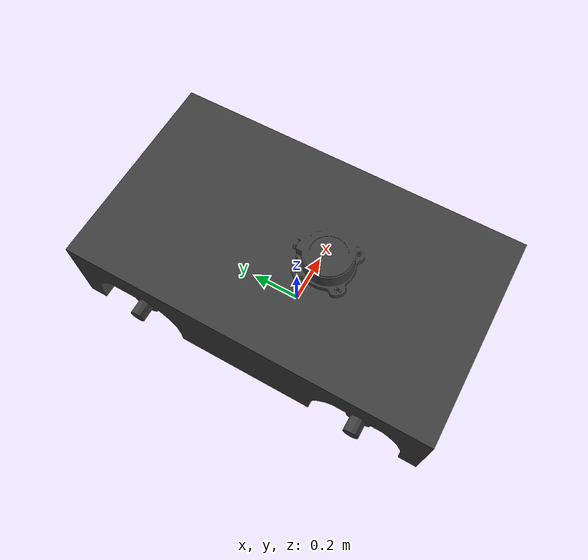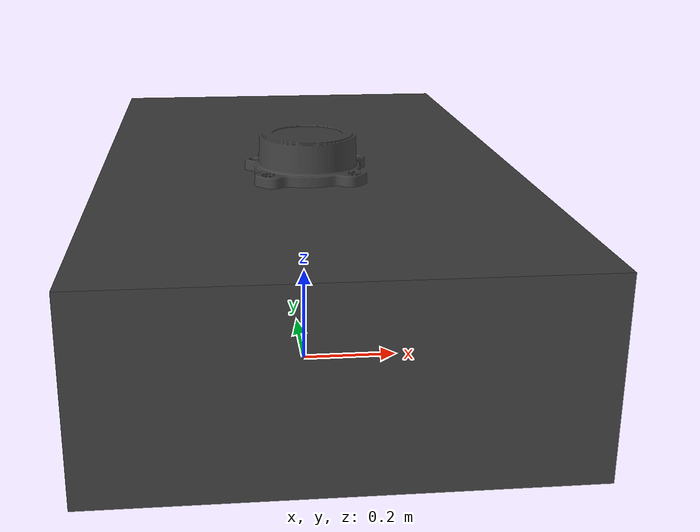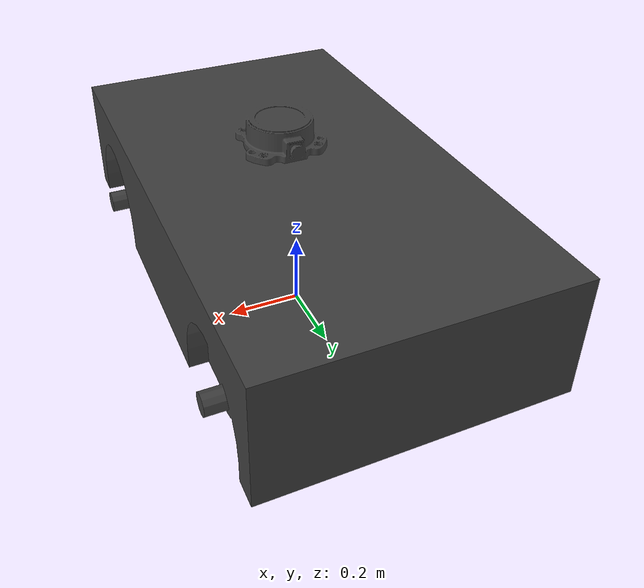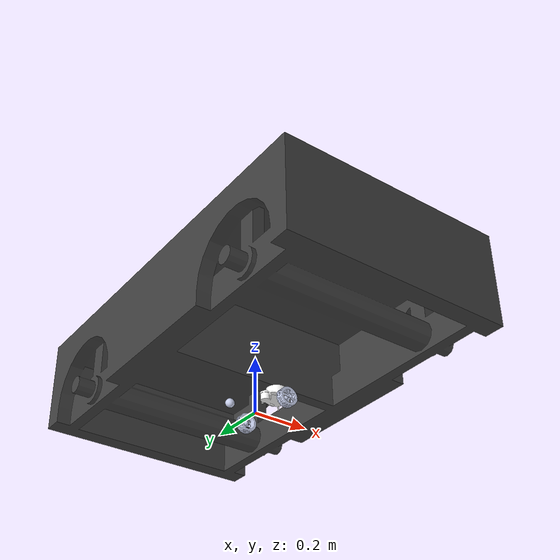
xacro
<?xml version="1.0" encoding="utf-8"?>
<robot xmlns:xacro="http://ros.org/wiki/xacro" name="robot_car">

  <!-- Các tham số chung -->
  <xacro:property name="base_color" value="0.25 0.25 0.25 1" />
  <xacro:property name="wheel_color" value="0.79 0.82 0.93 1" />
  <xacro:property name="ydlidar_color" value="1 1 1 1" />
  <xacro:property name="mesh_path" value="package://robot_description/meshes/" />

  <!-- Base Link -->
  <link name="base_link">
    <inertial>
      <origin xyz="0.00678154130032599 1.02572811355728E-11 0.049058783144438" rpy="0 0 0" />
      <mass value="0.73044118152173" />
      <inertia ixx="0.00392745212406862" ixy="-3.37182307490775E-11" ixz="0.000128556224286988"
              iyy="0.00654116388166114" iyz="-2.67918025679153E-17" izz="0.00775398575956591" />
    </inertial>
    <visual>
      <origin xyz="0 0 0" rpy="0 0 0" />
      <geometry>
        <mesh filename="${mesh_path}base_link.STL" />
      </geometry>
      <material name="base_material">
        <color rgba="${base_color}" />
      </material>
    </visual>
    <collision>
      <origin xyz="0 0 0" rpy="0 0 0" />
      <geometry>
        <mesh filename="${mesh_path}base_link.STL" />
      </geometry>
    </collision>
  </link>

  <!-- Right Wheel -->
  <xacro:macro name="wheel" params="wheel_name joint_name origin_xyz origin_rpy">
    <link name="${wheel_name}">
      <inertial>
        <origin xyz="0 0 0" rpy="0 0 0" />
        <mass value="0.02973385270431" />
        <inertia ixx="1.22905526652631E-05" ixy="0" ixz="0"
                iyy="1.22912184621518E-05" iyz="0" izz="2.03782430173705E-05" />
      </inertial>
      <visual>
        <origin xyz="0 0 0" rpy="0 0 0" />
        <geometry>
          <mesh filename="${mesh_path}${wheel_name}.STL" />
        </geometry>
        <material name="${wheel_name}_material">
          <color rgba="${wheel_color}" />
        </material>
      </visual>
      <collision>
        <origin xyz="0 0 0" rpy="0 0 0" />
        <geometry>
          <mesh filename="${mesh_path}${wheel_name}.STL" />
        </geometry>
      </collision>
    </link>
    <joint name="${joint_name}" type="continuous">
      <origin xyz="${origin_xyz}" rpy="${origin_rpy}" />
      <parent link="base_link" />
      <child link="${wheel_name}" />
      <axis xyz="0 0 1" />
      <dynamics damping="0.1" friction="0.1" />
    </joint>
  </xacro:macro>

  <!-- Left Wheel -->
  <xacro:wheel wheel_name="right_wheel" joint_name="right_wheel_joint"
                origin_xyz="0.043261 -0.1225 0.02" origin_rpy="-1.5708 0 0" />
  <xacro:wheel wheel_name="left_wheel" joint_name="left_wheel_joint"
                origin_xyz="0.043282 0.1225 0.02" origin_rpy="-1.5708 0 0" />

  <!-- Caster Wheel -->
  <link name="caster_wheel">
    <inertial>
      <origin xyz="-0.16814 0.0040136 -0.0726" rpy="0 0 0" />
      <mass value="0.014137" />
      <inertia ixx="1.2723E-06" ixy="0" ixz="0" iyy="1.2723E-06" iyz="0" izz="1.2723E-06" />
    </inertial>
    <visual>
      <origin xyz="0 0 0" rpy="0 0 0" />
      <geometry>
        <mesh filename="${mesh_path}caster_wheel.STL" />
      </geometry>
      <material name="caster_wheel_material">
        <color rgba="${wheel_color}" />
      </material>
    </visual>
    <collision>
      <origin xyz="0 0 0" rpy="0 0 0" />
      <geometry>
        <mesh filename="${mesh_path}caster_wheel.STL" />
      </geometry>
    </collision>
  </link>
  <joint name="caster_wheel_joint" type="fixed">
    <origin xyz="0.071461 -0.00080282 0.0776" rpy="0 0 0.019092" />
    <parent link="base_link" />
    <child link="caster_wheel" />
    <axis xyz="0 0 1" />
    <dynamics damping="0.1" friction="0.1" />
  </joint>

  <!-- LIDAR -->
  <link name="link_ydlidar">
    <inertial>
      <origin xyz="0 0 0" rpy="0 0 0" />
      <mass value="0" />
      <inertia ixx="0" ixy="0" ixz="0" iyy="0" iyz="0" izz="0" />
    </inertial>
    <visual>
      <origin xyz="0 0 0" rpy="0 0 0" />
      <geometry>
        <mesh filename="${mesh_path}link_ydlidar.STL" />
      </geometry>
      <material name="ydlidar_material">
        <color rgba="${ydlidar_color}" />
      </material>
    </visual>
    <collision>
      <origin xyz="0 0 0" rpy="0 0 0" />
      <geometry>
        <mesh filename="${mesh_path}link_ydlidar.STL" />
      </geometry>
    </collision>
  </link>
  <joint name="joint_ydlidar" type="fixed">
    <origin xyz="0.071461 -0.00080282 0.0776" rpy="0 0 0.019092" />
    <parent link="base_link" />
    <child link="link_ydlidar" />
  </joint>

</robot>
